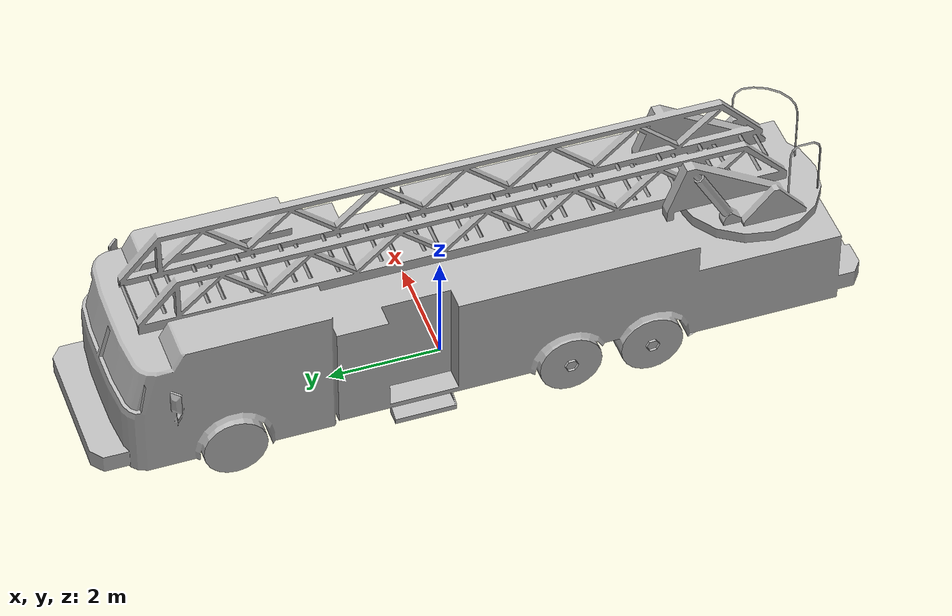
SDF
<?xml version="1.0" ?>
<sdf version="1.6">
  <model name="fire_truck">
    <static>true</static>
    <link name="link">
      <collision name="collision">
        <geometry>
          <mesh>
            <scale>0.11 0.11 0.11</scale>
            <uri>model://fire_truck/meshes/fire_truck.obj</uri>
          </mesh>
        </geometry>
      </collision>
      <visual name="visual">
        <geometry>
          <mesh>
            <scale>0.11 0.11 0.11</scale>
            <uri>model://fire_truck/meshes/fire_truck.obj</uri>
          </mesh>
        </geometry>
      </visual>
    </link>
  </model>
</sdf>
